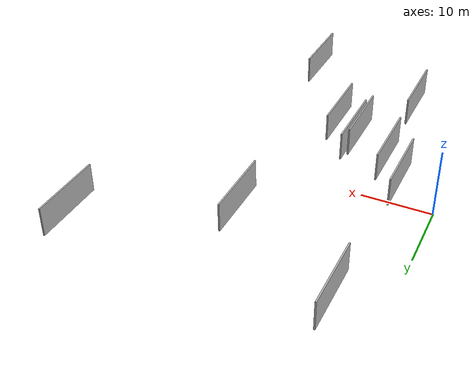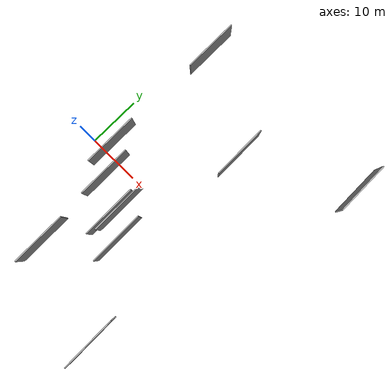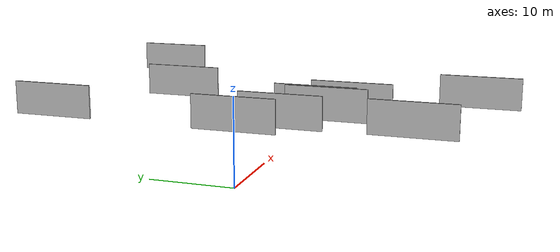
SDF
<sdf version="1.6">
 <world name="default">
  <scene>
   <sky><clouds><speed>12</speed></clouds></sky>
   <ambient>0.4 0.4 0.4 1</ambient>
   <background>0.7 0.7 0.7 1</background>
   <shadows>1</shadows>
  </scene>
  <gravity>0 0 -9.8066</gravity>
  <magnetic_field>6e-06 2.3e-05 -4.2e-05</magnetic_field>
  <physics default="0" name="default_physics" type="ode">
   <ode>
    <solver>
     <type>quick</type>
     <iters>10</iters>
     <sor>1.0</sor>
     <use_dynamic_moi_rescaling>0</use_dynamic_moi_rescaling>
    </solver>
    <constraints>
     <cfm>0</cfm>
     <erp>0.2</erp>
     <contact_max_correcting_vel>100</contact_max_correcting_vel>
     <contact_surface_layer>0.001</contact_surface_layer>
    </constraints>
   </ode>
   <max_step_size>0.004</max_step_size>
   <real_time_factor>1</real_time_factor>
   <real_time_update_rate>250</real_time_update_rate>
  </physics>
  <light name="sun" type="directional">
   <pose>0 0 10 0 0 0</pose>
   <diffuse>0.8 0.8 0.8 1</diffuse>
   <specular>0.2 0.2 0.2 1</specular>
   <attenuation>
    <range>1000</range>
    <constant>0.9</constant>
    <linear>0.01</linear>
    <quadratic>0.001</quadratic>
   </attenuation>
   <direction>-0.5 0.1 -0.9</direction>
  </light>
  <model name="grey_wall_1">
   <static>1</static>
   <pose>16.9093 -8.7016 5.0 0.000000 0.000000 1.570796</pose>
   <link name="link">
    <pose>0 0 2.00 0 0 0</pose>
    <collision name="collision"><geometry><box><size>10.00 0.2 4.00</size></box></geometry></collision>
    <visual name="visual">
     <cast_shadows>0</cast_shadows>
     <geometry><box><size>10.00 0.2 4.00</size></box></geometry>
     <material>
      <script>
       <uri>model://HANNAS_wall/materials/scripts</uri>
       <uri>model://HANNAS_wall/materials/textures</uri>
       <name>vrc/HANNAS_wall</name>
      </script>
     </material>
    </visual>
   </link>
  </model>
  <model name="grey_wall_2">
   <static>1</static>
   <pose>13.4997 -5.0482 5.0 0.000000 0.000000 1.570796</pose>
   <link name="link">
    <pose>0 0 2.00 0 0 0</pose>
    <collision name="collision"><geometry><box><size>10.00 0.2 4.00</size></box></geometry></collision>
    <visual name="visual">
     <cast_shadows>0</cast_shadows>
     <geometry><box><size>10.00 0.2 4.00</size></box></geometry>
     <material>
      <script>
       <uri>model://HANNAS_wall/materials/scripts</uri>
       <uri>model://HANNAS_wall/materials/textures</uri>
       <name>vrc/HANNAS_wall</name>
      </script>
     </material>
    </visual>
   </link>
  </model>
  <model name="grey_wall_3">
   <static>1</static>
   <pose>5.0684 25.0989 5.0 0.000000 0.000000 1.570796</pose>
   <link name="link">
    <pose>0 0 2.00 0 0 0</pose>
    <collision name="collision"><geometry><box><size>10.00 0.2 4.00</size></box></geometry></collision>
    <visual name="visual">
     <cast_shadows>0</cast_shadows>
     <geometry><box><size>10.00 0.2 4.00</size></box></geometry>
     <material>
      <script>
       <uri>model://HANNAS_wall/materials/scripts</uri>
       <uri>model://HANNAS_wall/materials/textures</uri>
       <name>vrc/HANNAS_wall</name>
      </script>
     </material>
    </visual>
   </link>
  </model>
  <model name="grey_wall_4">
   <static>1</static>
   <pose>4.5947 1.9029 5.0 0.000000 0.000000 1.570796</pose>
   <link name="link">
    <pose>0 0 2.00 0 0 0</pose>
    <collision name="collision"><geometry><box><size>10.00 0.2 4.00</size></box></geometry></collision>
    <visual name="visual">
     <cast_shadows>0</cast_shadows>
     <geometry><box><size>10.00 0.2 4.00</size></box></geometry>
     <material>
      <script>
       <uri>model://HANNAS_wall/materials/scripts</uri>
       <uri>model://HANNAS_wall/materials/textures</uri>
       <name>vrc/HANNAS_wall</name>
      </script>
     </material>
    </visual>
   </link>
  </model>
  <model name="grey_wall_5">
   <static>1</static>
   <pose>25.5202 -23.1464 5.0 0.000000 0.000000 1.570796</pose>
   <link name="link">
    <pose>0 0 2.00 0 0 0</pose>
    <collision name="collision"><geometry><box><size>10.00 0.2 4.00</size></box></geometry></collision>
    <visual name="visual">
     <cast_shadows>0</cast_shadows>
     <geometry><box><size>10.00 0.2 4.00</size></box></geometry>
     <material>
      <script>
       <uri>model://HANNAS_wall/materials/scripts</uri>
       <uri>model://HANNAS_wall/materials/textures</uri>
       <name>vrc/HANNAS_wall</name>
      </script>
     </material>
    </visual>
   </link>
  </model>
  <model name="grey_wall_6">
   <static>1</static>
   <pose>12.9648 -6.5248 5.0 0.000000 0.000000 1.570796</pose>
   <link name="link">
    <pose>0 0 2.00 0 0 0</pose>
    <collision name="collision"><geometry><box><size>10.00 0.2 4.00</size></box></geometry></collision>
    <visual name="visual">
     <cast_shadows>0</cast_shadows>
     <geometry><box><size>10.00 0.2 4.00</size></box></geometry>
     <material>
      <script>
       <uri>model://HANNAS_wall/materials/scripts</uri>
       <uri>model://HANNAS_wall/materials/textures</uri>
       <name>vrc/HANNAS_wall</name>
      </script>
     </material>
    </visual>
   </link>
  </model>
  <model name="grey_wall_7">
   <static>1</static>
   <pose>21.2629 15.3226 5.0 0.000000 0.000000 1.570796</pose>
   <link name="link">
    <pose>0 0 2.00 0 0 0</pose>
    <collision name="collision"><geometry><box><size>10.00 0.2 4.00</size></box></geometry></collision>
    <visual name="visual">
     <cast_shadows>0</cast_shadows>
     <geometry><box><size>10.00 0.2 4.00</size></box></geometry>
     <material>
      <script>
       <uri>model://HANNAS_wall/materials/scripts</uri>
       <uri>model://HANNAS_wall/materials/textures</uri>
       <name>vrc/HANNAS_wall</name>
      </script>
     </material>
    </visual>
   </link>
  </model>
  <model name="grey_wall_8">
   <static>1</static>
   <pose>39.6776 24.9618 5.0 0.000000 0.000000 1.570796</pose>
   <link name="link">
    <pose>0 0 2.00 0 0 0</pose>
    <collision name="collision"><geometry><box><size>10.00 0.2 4.00</size></box></geometry></collision>
    <visual name="visual">
     <cast_shadows>0</cast_shadows>
     <geometry><box><size>10.00 0.2 4.00</size></box></geometry>
     <material>
      <script>
       <uri>model://HANNAS_wall/materials/scripts</uri>
       <uri>model://HANNAS_wall/materials/textures</uri>
       <name>vrc/HANNAS_wall</name>
      </script>
     </material>
    </visual>
   </link>
  </model>
  <model name="grey_wall_9">
   <static>1</static>
   <pose>8.0840 -17.4877 5.0 0.000000 0.000000 1.570796</pose>
   <link name="link">
    <pose>0 0 2.00 0 0 0</pose>
    <collision name="collision"><geometry><box><size>10.00 0.2 4.00</size></box></geometry></collision>
    <visual name="visual">
     <cast_shadows>0</cast_shadows>
     <geometry><box><size>10.00 0.2 4.00</size></box></geometry>
     <material>
      <script>
       <uri>model://HANNAS_wall/materials/scripts</uri>
       <uri>model://HANNAS_wall/materials/textures</uri>
       <name>vrc/HANNAS_wall</name>
      </script>
     </material>
    </visual>
   </link>
  </model>
  <model name="grey_wall_10">
   <static>1</static>
   <pose>7.6923 -2.5497 5.0 0.000000 0.000000 1.570796</pose>
   <link name="link">
    <pose>0 0 2.00 0 0 0</pose>
    <collision name="collision"><geometry><box><size>10.00 0.2 4.00</size></box></geometry></collision>
    <visual name="visual">
     <cast_shadows>0</cast_shadows>
     <geometry><box><size>10.00 0.2 4.00</size></box></geometry>
     <material>
      <script>
       <uri>model://HANNAS_wall/materials/scripts</uri>
       <uri>model://HANNAS_wall/materials/textures</uri>
       <name>vrc/HANNAS_wall</name>
      </script>
     </material>
    </visual>
   </link>
  </model>
 </world>
</sdf>
